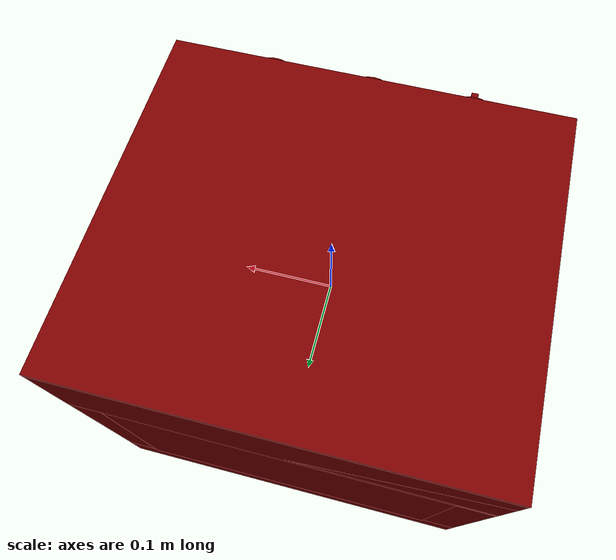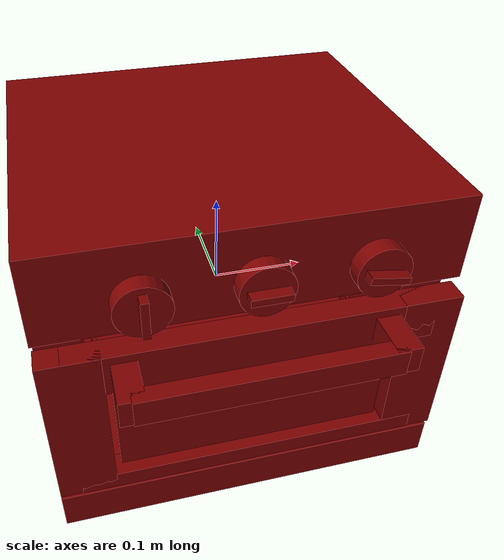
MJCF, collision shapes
<?xml version='1.0' encoding='UTF-8'?>
<mujoco model="model">
  <option timestep="0.002" gravity="0.0 0.0 -9.81"/>
  <compiler angle="radian"/>
  <asset>
    <mesh file="visuals/Body001.obj" name="Body001_vis"/>
    <mesh file="visuals/Container001.obj" name="Container001_vis"/>
    <mesh file="visuals/Door001.obj" name="Door001_vis"/>
    <mesh file="visuals/Door001_Clear.obj" name="Door001_Clear_vis"/>
    <mesh file="visuals/Handle001.obj" name="Handle001_vis"/>
    <mesh file="visuals/Knob001.obj" name="Knob001_vis"/>
    <mesh file="visuals/Knob002.obj" name="Knob002_vis"/>
    <mesh file="visuals/Knob003.obj" name="Knob003_vis"/>
    <texture file="visuals/T_BC001.png" name="Body001_material" type="2d"/>
    <material name="Body001_material" rgba="1 1 1 1.0" texture="Body001_material" shininess="0.4472135901451111" specular="1.5"/>
    <texture file="visuals/T_BC001.png" name="Container001_material" type="2d"/>
    <material name="Container001_material" rgba="1 1 1 1.0" texture="Container001_material" shininess="0.4472135901451111" specular="2"/>
    <texture file="visuals/T_BC001.png" name="Door001_material" type="2d"/>
    <material name="Door001_material" rgba="1 1 1 1.0" texture="Door001_material" shininess="0.4472135901451111" specular="1"/>
    <texture file="visuals/T_BC001.png" name="Door001_Clear_material" type="2d"/>
    <material name="Door001_Clear_material" rgba="1 1 1 0.800000011920929" texture="Door001_Clear_material" shininess="0.4472135901451111" specular="0.3103448502657381"/>
    <texture file="visuals/T_BC001.png" name="Handle001_material" type="2d"/>
    <material name="Handle001_material" rgba="1 1 1 1.0" texture="Handle001_material" shininess="0.4472135901451111" specular="1"/>
    <texture file="visuals/T_BC001.png" name="Knob001_material" type="2d"/>
    <material name="Knob001_material" rgba="1 1 1 1.0" texture="Knob001_material" shininess="0.4472135901451111" specular="0.3103448502657381"/>
    <texture file="visuals/T_BC001.png" name="Knob002_material" type="2d"/>
    <material name="Knob002_material" rgba="1 1 1 1.0" texture="Knob002_material" shininess="0.4472135901451111" specular="0.3103448502657381"/>
    <texture file="visuals/T_BC001.png" name="Knob003_material" type="2d"/>
    <material name="Knob003_material" rgba="1 1 1 1.0" texture="Knob003_material" shininess="0.4472135901451111" specular="0.3103448502657381"/>
  </asset>
  <default>
    <default class="visual">
      <geom conaffinity="0" contype="0" group="1" type="mesh"/>
    </default>
    <default class="collision">
      <geom group="0" rgba="0.5 0 0 0.5"/>
    </default>
    <default class="spawn">
      <geom group="0" rgba="1 1 1 0.5" contype="0" conaffinity="0"/>
      <site group="0" rgba="1 1 1 0.5"/>
    </default>
    <default class="region">
      <geom group="1" conaffinity="0" contype="0" rgba="0 1 0 0"/>
    </default>
  </default>
  <worldbody>
    <body>
      <body name="object">
        <geom mesh="Body001_vis" type="mesh" solimp="0.998 0.998 0.001" solref="0.001 1" friction="0.95 0.3 0.1" class="visual" material="Body001_material"/>
        <geom class="collision" type="box" pos="-0.18147674202919006 0.04236263409256935 0.00031111846328713" size="0.021755272522568703 0.17016175389289856 0.16772650182247162" quat="1.0 0.0 0.0 0.0" density="1000.0"/>
        <geom class="collision" type="box" pos="0.1809757947921753 0.04236263036727905 0.00031111299176700413" size="0.021713009104132652 0.17016175389289856 0.16772650182247162" quat="1.0 0.0 0.0 0.0" density="1000.0"/>
        <geom class="collision" type="box" pos="-0.0001479433849453926 0.029490487650036812 0.1237911581993103" size="0.20309820771217346 0.18304193019866943 0.045912425965070724" quat="1.0 0.0 0.0 0.0" density="1000.0"/>
        <geom class="collision" type="box" pos="-0.0001479376805946231 0.023927586153149605 -0.14740148186683655" size="0.20309823751449585 0.18868109583854675 0.02170015498995781" quat="1.0 0.0 0.0 0.0" density="1000.0"/>
        <geom class="collision" type="box" pos="0.0008273124694824219 0.19466279447078705 -0.02781521901488304" size="0.1677703559398651 0.018282974138855934 0.10329373925924301" quat="1.0 0.0 0.0 0.0" density="1000.0"/>
        <geom class="collision" type="box" pos="-0.0001479433849453926 0.040158651769161224 0.11822858452796936" size="0.20309820771217346 0.17237377166748047 0.045912425965070724" quat="1.0 0.0 0.0 0.0" density="1000.0"/>
        <body name="Container001">
          <joint axis="0.0 -1.0 0.0" pos="-7.450580596923828e-08 0.015808526426553726 -0.03671008720993996" limited="true" name="Container001_joint" range="0.0 0.15" type="slide" damping="1" frictionloss="1" armature=".01" stiffness="0.05"/>
          <geom mesh="Container001_vis" type="mesh" solimp="0.998 0.998 0.001" solref="0.001 1" friction="0.95 0.3 0.1" class="visual" material="Container001_material"/>
          <geom class="collision" type="box" pos="-1.637882087379694e-05 0.016132550314068794 -0.04400089755654335" size="0.1500629335641861 0.09756642580032349 0.0018373767379671335" quat="1.0 0.0 0.0 0.0" density="1000.0"/>
          <geom class="collision" type="box" pos="-0.1469087153673172 0.016132550314068794 -0.03563903272151947" size="0.0019273675279691815 0.10068270564079285 0.007910254411399364" quat="1.0 0.0 0.0 0.0" density="1000.0"/>
          <geom class="collision" type="box" pos="0.14828330278396606 0.016132550314068794 -0.03563903272151947" size="0.0019273672951385379 0.10068278759717941 0.007910260930657387" quat="1.0 0.0 0.0 0.0" density="1000.0"/>
          <geom class="collision" type="box" pos="0.0014555745292454958 0.11549030244350433 -0.03563903272151947" size="0.14862379431724548 0.001927376608364284 0.007910311222076416" quat="1.0 0.0 0.0 0.0" density="1000.0"/>
          <geom class="collision" type="box" pos="0.0014555745292454958 -0.08175325393676758 -0.03563903272151947" size="0.14714929461479187 0.0019273790530860424 0.007910311222076416" quat="1.0 0.0 0.0 0.0" density="1000.0"/>
        </body>
        <body name="Door001">
          <joint axis="1.0 0.0 0.0" pos="-2.3642182895855512e-06 -0.16906316578388214 -0.11806919425725937" limited="true" name="Door001_joint" range="0.0 1.5707963267948966" type="hinge" damping="1" frictionloss="1" armature=".01" stiffness="0.05"/>
          <geom mesh="Door001_vis" type="mesh" solimp="0.998 0.998 0.001" solref="0.001 1" friction="0.95 0.3 0.1" class="visual" material="Door001_material"/>
          <geom class="collision" type="box" pos="0.1727624088525772 -0.1562410593032837 -0.02563704364001751" size="0.02967485412955284 0.012339459732174873 0.09060528129339218" quat="1.0 0.0 0.0 0.0" density="1000.0"/>
          <geom class="collision" type="box" pos="-0.17381608486175537 -0.1562410593032837 -0.02563704364001751" size="0.028917085379362106 0.012339475564658642 0.09060528129339218" quat="1.0 0.0 0.0 0.0" density="1000.0"/>
          <geom class="collision" type="box" pos="-0.0018697232007980347 -0.1562410593032837 0.04281807690858841" size="0.17822472751140594 0.012339476495981216 0.02215016447007656" quat="1.0 0.0 0.0 0.0" density="1000.0"/>
          <geom class="collision" type="box" pos="-0.0018697232007980347 -0.1562410593032837 -0.10760483145713806" size="0.17822474241256714 0.012339478358626366 0.009446049109101295" quat="1.0 0.0 0.0 0.0" density="1000.0"/>
          <body name="Door001_Clear">
            <geom mesh="Door001_Clear_vis" type="mesh" solimp="0.998 0.998 0.001" solref="0.001 1" friction="0.95 0.3 0.1" class="visual" material="Door001_Clear_material"/>
            <geom class="collision" type="box" pos="-0.0009023664752021432 -0.15787915885448456 -0.03828054666519165" size="0.13771720230579376 0.001710304873995483 0.05485512316226959" quat="1.0 0.0 0.0 0.0" density="1000.0"/>
          </body>
          <body name="Handle001">
            <geom mesh="Handle001_vis" type="mesh" solimp="0.998 0.998 0.001" solref="0.001 1" friction="0.95 0.3 0.1" class="visual" material="Handle001_material"/>
            <geom class="collision" type="box" pos="-0.12593038380146027 -0.19163265824317932 0.042177170515060425" size="0.012202798388898373 0.023386262357234955 0.013994084671139717" quat="1.0 0.0 0.0 0.0" density="1000.0"/>
            <geom class="collision" type="box" pos="0.12518303096294403 -0.19163265824317932 0.042177170515060425" size="0.012202798388898373 0.023386262357234955 0.013994084671139717" quat="1.0 0.0 0.0 0.0" density="1000.0"/>
            <geom class="collision" type="box" pos="-0.0009195655584335327 -0.20828256011009216 0.042177170515060425" size="0.12505295872688293 0.008632255718111992 0.013994105160236359" quat="1.0 0.0 0.0 0.0" density="1000.0"/>
          </body>
        </body>
        <body name="Knob001">
          <joint axis="0.0 1.0 0.0" pos="-0.10654377192258835 -0.17358732223510742 0.11894413083791733" limited="true" name="Knob001_joint" range="0.0 3.9269908169872414" type="hinge" damping="0.05" armature="0.001"/>
          <geom mesh="Knob001_vis" type="mesh" solimp="0.998 0.998 0.001" solref="0.001 1" friction="0.95 0.3 0.1" class="visual" material="Knob001_material"/>
          <geom class="collision" type="cylinder" pos="-0.10654377192258835 -0.17050547897815704 0.11894413083791733" size="0.02601364254951477 0.00852160807698965" quat="0.7071068286895752 0.7071067690849304 -1.5700924318127872e-16 -5.9269340452702814e-24" density="1000.0"/>
          <geom class="collision" type="box" pos="-0.1065550297498703 -0.1830083280801773 0.11900540441274643" size="0.0036553440149873495 0.007625086233019829 0.018960244953632355" quat="1.0 0.0 0.0 0.0" density="1000.0"/>
        </body>
        <body name="Knob002">
          <joint axis="0.0 1.0 0.0" pos="-0.00015396400704048574 -0.17358732223510742 0.11894413083791733" limited="true" name="Knob002_joint" range="0.0 3.3161255787892263" type="hinge" damping="0.05" armature="0.001"/>
          <geom mesh="Knob002_vis" type="mesh" solimp="0.998 0.998 0.001" solref="0.001 1" friction="0.95 0.3 0.1" class="visual" material="Knob002_material"/>
          <geom class="collision" type="cylinder" pos="-0.00015396438539028168 -0.17050547897815704 0.11894413083791733" size="0.02601364254951477 0.00852160807698965" quat="0.7071068286895752 0.7071067690849304 -1.5700924318127872e-16 -5.9269340452702814e-24" density="1000.0"/>
          <geom class="collision" type="box" pos="-0.0001539599907118827 -0.1830083280801773 0.11900540441274643" size="0.0036553440149873495 0.007625086233019829 0.018960244953632355" quat="0.7071068286895752 -0.0 0.7071067690849304 0.0" density="1000.0"/>
        </body>
        <body name="Knob003">
          <joint axis="0.0 1.0 0.0" pos="0.10623583197593689 -0.1735873520374298 0.11894413083791733" limited="true" name="Knob003_joint" range="0.0 3.3161255787892263" type="hinge" damping="0.05" armature="0.001"/>
          <geom mesh="Knob003_vis" type="mesh" solimp="0.998 0.998 0.001" solref="0.001 1" friction="0.95 0.3 0.1" class="visual" material="Knob003_material"/>
          <geom class="collision" type="cylinder" pos="0.10623583197593689 -0.17050550878047943 0.11894413083791733" size="0.02601364254951477 0.00852160807698965" quat="0.7071068286895752 0.7071067690849304 -1.5700924318127872e-16 -5.9269340452702814e-24" density="1000.0"/>
          <geom class="collision" type="box" pos="0.10623599588871002 -0.1830083280801773 0.11900540441274643" size="0.0036553440149873495 0.007625086233019829 0.018960244953632355" quat="0.6462909579277039 0.0 0.7630910873413086 0.0" density="1000.0"/>
        </body>
        <geom class="region" name="reg_int" type="box" pos="0.00022535771131515503 0.02497449517250061 -0.025999005883932114" size="0.16589530557394028 0.1582910269498825 0.0993095226585865"/>
        <geom class="region" name="reg_main" type="box" pos="0.0 0.023186296224594116 0.0" size="0.2046337127685547 0.1923275887966156 0.17089757323265076"/>
      </body>
    </body>
  </worldbody>
  <actuator>
    <motor name="Container001_joint_actuator" joint="Container001_joint" gear="10"/>
    <motor name="Door001_joint_actuator" joint="Door001_joint" gear="50"/>
    <motor name="Knob001_joint_actuator" joint="Knob001_joint" gear="50"/>
    <motor name="Knob002_joint_actuator" joint="Knob002_joint" gear="50"/>
    <motor name="Knob003_joint_actuator" joint="Knob003_joint" gear="50"/>
  </actuator>
</mujoco>
